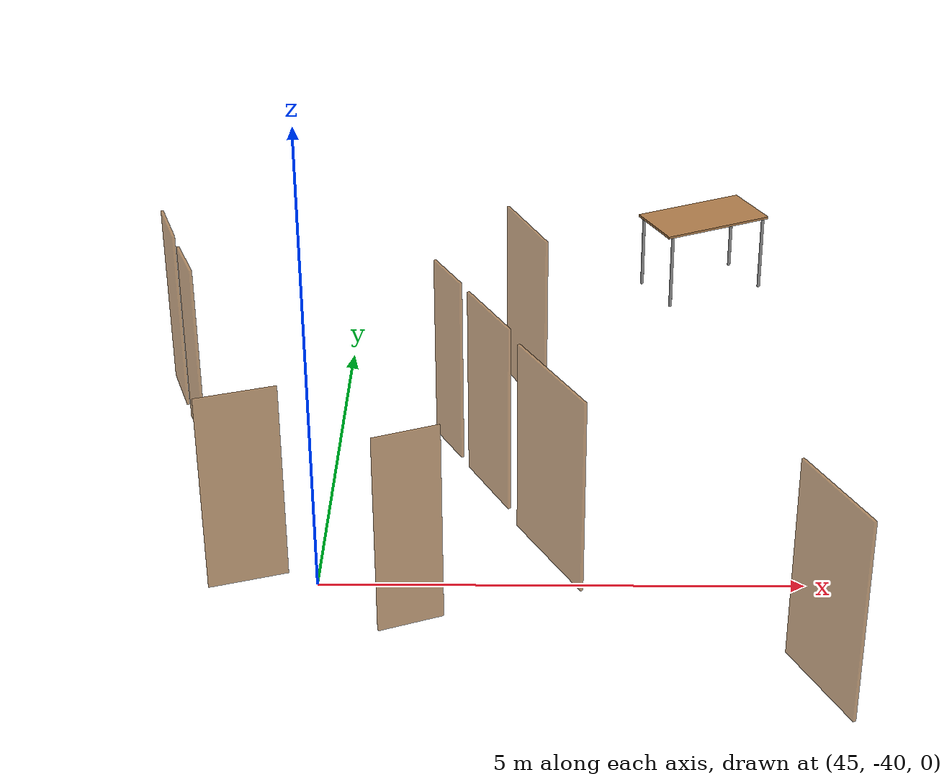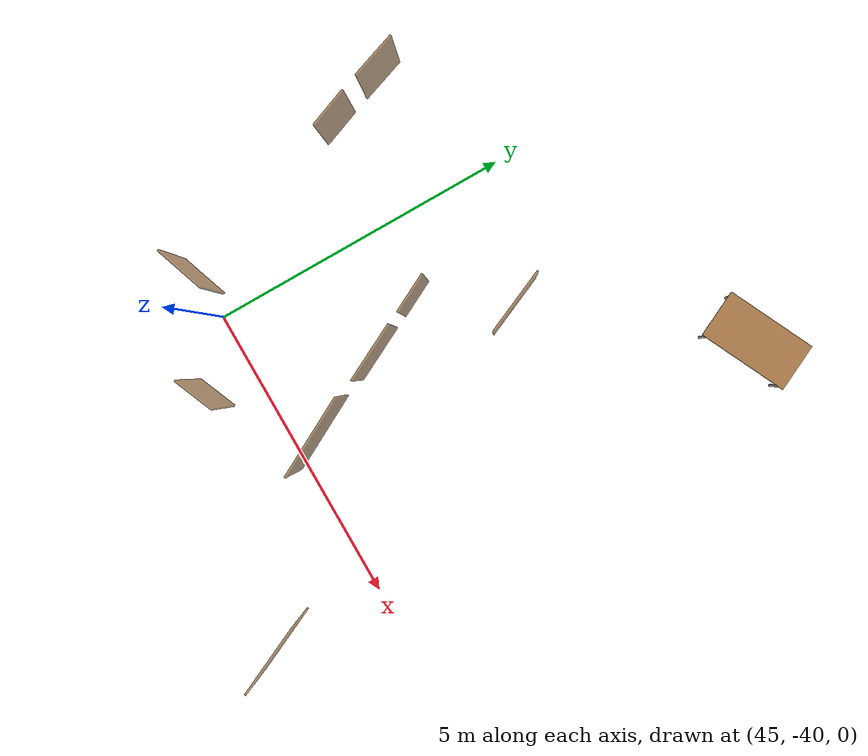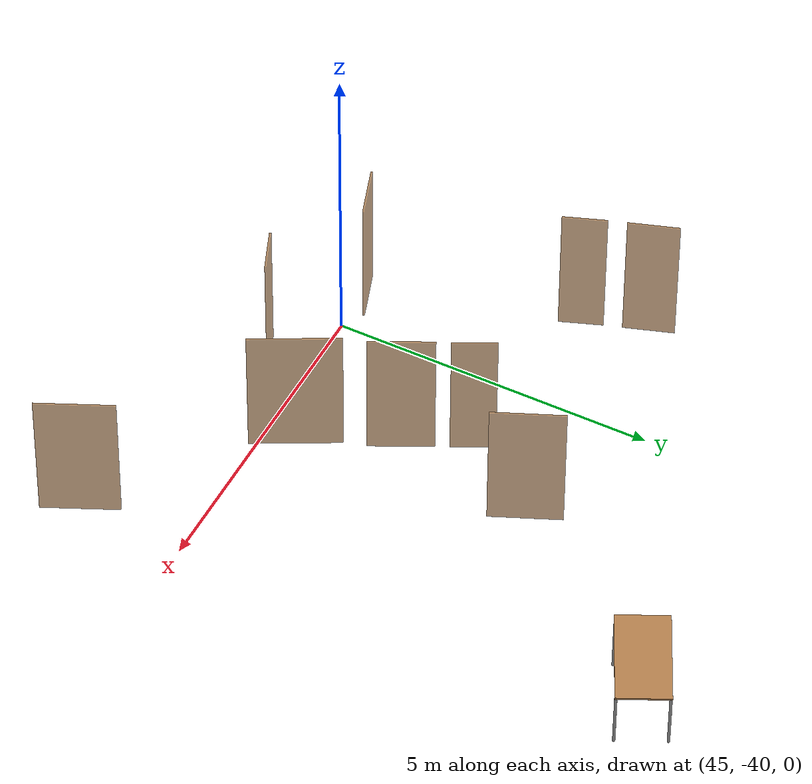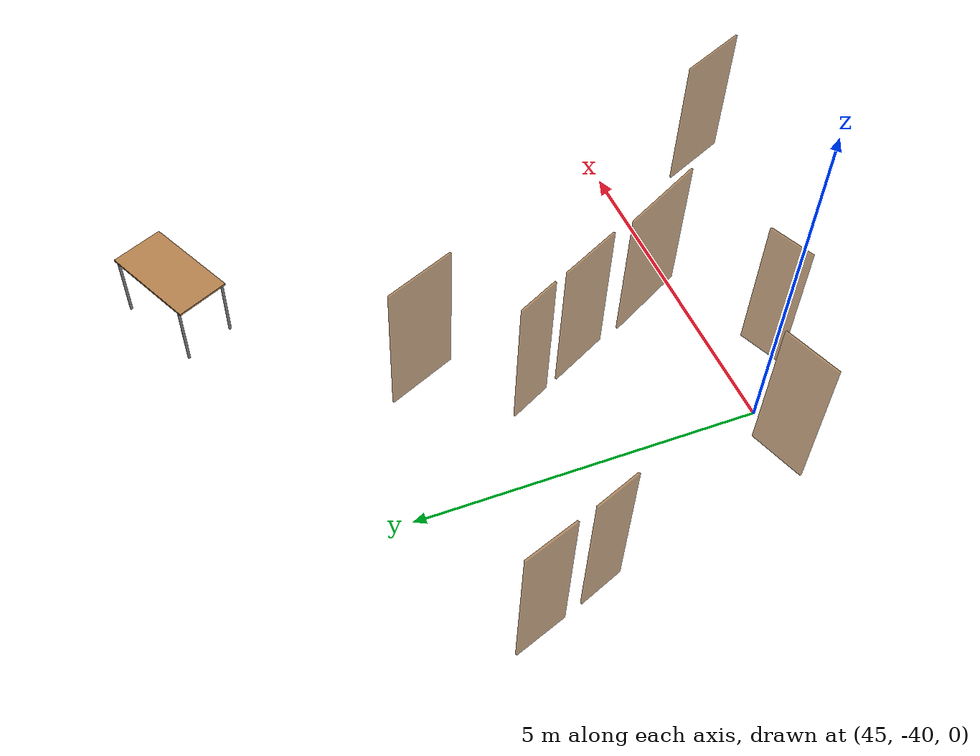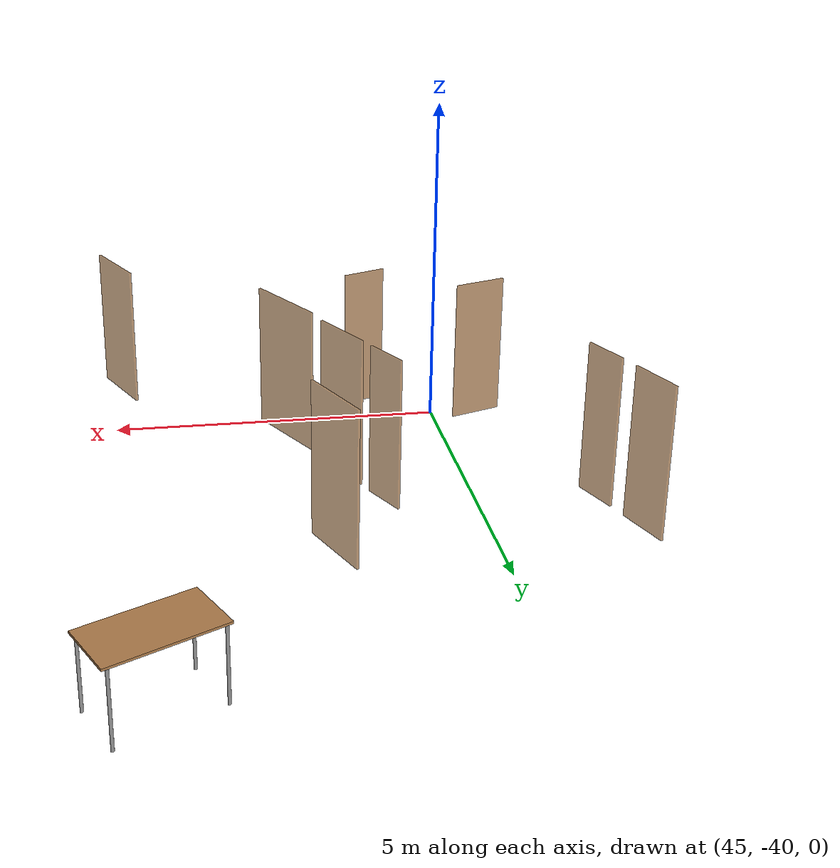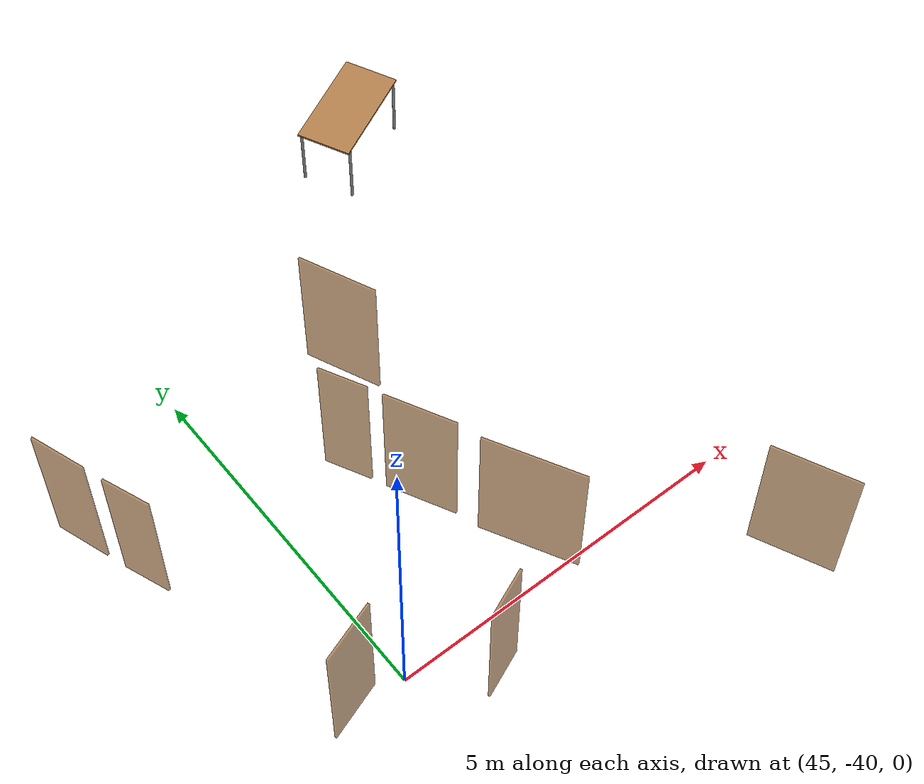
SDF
<sdf version="1.7">
 <world name="world">
  <include><uri>model://sun</uri></include>
  <include>
   <name>OpenRobotics/Table_8</name>
   <uri>model://Table</uri>
   <pose>49.48079260067924 -32.93587647956295 0.0 0 0 0.4547</pose>
   <static>True</static>
  </include>
  <model name="D1">
   <pose>46.73401999696762 -38.116521904240905 0.0 0 0 -1.0989798712124268</pose>
   <link name="right">
    <pose>0 0 1.11 0 0 0</pose>
    <visual name="right_visual">
     <geometry><box><size>0.9954726975178174 0.03 2.2</size></box></geometry>
     <material><ambient>0.5 0.25 0 0.6</ambient><diffuse>0.5 0.25 0 0.6</diffuse></material>
    </visual>
    <collision name="right_collision">
     <geometry><box><size>0.9954726975178174 0.03 2.2</size></box></geometry>
     <surface><contact><collide_bitmask>0x02</collide_bitmask></contact></surface>
    </collision>
    <inertial>
     <mass>50.0</mass>
     <inertia><ixx>20.17041666666667</ixx><iyy>24.295691214597504</iyy><izz>4.1327745479308335</izz></inertia>
    </inertial>
   </link>
   <joint name="right_joint" type="revolute">
    <parent>world</parent>
    <child>right</child>
    <axis><xyz>0 0 1</xyz><limit><lower>0</lower><upper>1.57</upper></limit></axis>
    <pose>0.5027363487589087 0 0 0 0 0</pose>
   </joint>
   <plugin name="door" filename="libdoor.so">
    <v_max_door>0.5</v_max_door>
    <a_max_door>0.3</a_max_door>
    <a_nom_door>0.15</a_nom_door>
    <dx_min_door>0.01</dx_min_door>
    <f_max_door>500.0</f_max_door>
    <door name="D1" type="SwingDoor" left_joint_name="empty_joint" right_joint_name="right_joint"/>
   </plugin>
  </model>
  <model name="D3">
   <pose>44.28064762432295 -39.935648684650616 0.0 0 0 -2.8085231029714617</pose>
   <link name="right">
    <pose>0 0 1.11 0 0 0</pose>
    <visual name="right_visual">
     <geometry><box><size>0.8388526958667103 0.03 2.2</size></box></geometry>
     <material><ambient>0.5 0.25 0 0.6</ambient><diffuse>0.5 0.25 0 0.6</diffuse></material>
    </visual>
    <collision name="right_collision">
     <geometry><box><size>0.8388526958667103 0.03 2.2</size></box></geometry>
     <surface><contact><collide_bitmask>0x02</collide_bitmask></contact></surface>
    </collision>
    <inertial>
     <mass>50.0</mass>
     <inertia><ixx>20.17041666666667</ixx><iyy>23.098641022345202</iyy><izz>2.935724355678532</izz></inertia>
    </inertial>
   </link>
   <joint name="right_joint" type="revolute">
    <parent>world</parent>
    <child>right</child>
    <axis><xyz>0 0 1</xyz><limit><lower>0</lower><upper>1.57</upper></limit></axis>
    <pose>0.42442634793335515 0 0 0 0 0</pose>
   </joint>
   <plugin name="door" filename="libdoor.so">
    <v_max_door>0.5</v_max_door>
    <a_max_door>0.3</a_max_door>
    <a_nom_door>0.15</a_nom_door>
    <dx_min_door>0.01</dx_min_door>
    <f_max_door>500.0</f_max_door>
    <door name="D3" type="SwingDoor" left_joint_name="empty_joint" right_joint_name="right_joint"/>
   </plugin>
  </model>
  <model name="D4">
   <pose>46.26773129898525 -37.17578190524803 0.0 0 0 -1.0969033267898198</pose>
   <link name="right">
    <pose>0 0 1.11 0 0 0</pose>
    <visual name="right_visual">
     <geometry><box><size>0.6729192020442292 0.03 2.2</size></box></geometry>
     <material><ambient>0.5 0.25 0 0.6</ambient><diffuse>0.5 0.25 0 0.6</diffuse></material>
    </visual>
    <collision name="right_collision">
     <geometry><box><size>0.6729192020442292 0.03 2.2</size></box></geometry>
     <surface><contact><collide_bitmask>0x02</collide_bitmask></contact></surface>
    </collision>
    <inertial>
     <mass>50.0</mass>
     <inertia><ixx>20.17041666666667</ixx><iyy>22.053417718666015</iyy><izz>1.8905010519993424</izz></inertia>
    </inertial>
   </link>
   <joint name="right_joint" type="revolute">
    <parent>world</parent>
    <child>right</child>
    <axis><xyz>0 0 1</xyz><limit><lower>0</lower><upper>1.57</upper></limit></axis>
    <pose>0.3414596010221146 0 0 0 0 0</pose>
   </joint>
   <plugin name="door" filename="libdoor.so">
    <v_max_door>0.5</v_max_door>
    <a_max_door>0.3</a_max_door>
    <a_nom_door>0.15</a_nom_door>
    <dx_min_door>0.01</dx_min_door>
    <f_max_door>500.0</f_max_door>
    <door name="D4" type="SwingDoor" left_joint_name="empty_joint" right_joint_name="right_joint"/>
   </plugin>
  </model>
  <model name="D5">
   <pose>47.146061395658826 -35.89175910112735 0.0 0 0 -1.153911512128053</pose>
   <link name="right">
    <pose>0 0 1.11 0 0 0</pose>
    <visual name="right_visual">
     <geometry><box><size>1.107136500225775 0.03 2.2</size></box></geometry>
     <material><ambient>0.5 0.25 0 0.6</ambient><diffuse>0.5 0.25 0 0.6</diffuse></material>
    </visual>
    <collision name="right_collision">
     <geometry><box><size>1.107136500225775 0.03 2.2</size></box></geometry>
     <surface><contact><collide_bitmask>0x02</collide_bitmask></contact></surface>
    </collision>
    <inertial>
     <mass>50.0</mass>
     <inertia><ixx>20.17041666666667</ixx><iyy>25.273963458884076</iyy><izz>5.111046792217405</izz></inertia>
    </inertial>
   </link>
   <joint name="right_joint" type="revolute">
    <parent>world</parent>
    <child>right</child>
    <axis><xyz>0 0 -1</xyz><limit><lower>0</lower><upper>1.57</upper></limit></axis>
    <pose>0.5585682501128875 0 0 0 0 0</pose>
   </joint>
   <plugin name="door" filename="libdoor.so">
    <v_max_door>0.5</v_max_door>
    <a_max_door>0.3</a_max_door>
    <a_nom_door>0.15</a_nom_door>
    <dx_min_door>0.01</dx_min_door>
    <f_max_door>500.0</f_max_door>
    <door name="D5" type="SwingDoor" left_joint_name="empty_joint" right_joint_name="right_joint"/>
   </plugin>
  </model>
  <model name="D6">
   <pose>49.93642456693043 -41.661415692926 0.0 0 0 -1.1319738374537638</pose>
   <link name="right">
    <pose>0 0 1.11 0 0 0</pose>
    <visual name="right_visual">
     <geometry><box><size>1.1848690229402588 0.03 2.2</size></box></geometry>
     <material><ambient>0.5 0.25 0 0.6</ambient><diffuse>0.5 0.25 0 0.6</diffuse></material>
    </visual>
    <collision name="right_collision">
     <geometry><box><size>1.1848690229402588 0.03 2.2</size></box></geometry>
     <surface><contact><collide_bitmask>0x02</collide_bitmask></contact></surface>
    </collision>
    <inertial>
     <mass>50.0</mass>
     <inertia><ixx>20.17041666666667</ixx><iyy>26.016310839680852</iyy><izz>5.8533941730141805</izz></inertia>
    </inertial>
   </link>
   <joint name="right_joint" type="revolute">
    <parent>world</parent>
    <child>right</child>
    <axis><xyz>0 0 -1</xyz><limit><lower>0</lower><upper>1.57</upper></limit></axis>
    <pose>0.5974345114701294 0 0 0 0 0</pose>
   </joint>
   <plugin name="door" filename="libdoor.so">
    <v_max_door>0.5</v_max_door>
    <a_max_door>0.3</a_max_door>
    <a_nom_door>0.15</a_nom_door>
    <dx_min_door>0.01</dx_min_door>
    <f_max_door>500.0</f_max_door>
    <door name="D6" type="SwingDoor" left_joint_name="empty_joint" right_joint_name="right_joint"/>
   </plugin>
  </model>
  <model name="D10">
   <pose>47.383400415650584 -39.50030985648326 0.0 0 0 -1.079641047657817</pose>
   <link name="right">
    <pose>0 0 1.11 0 0 0</pose>
    <visual name="right_visual">
     <geometry><box><size>1.387273254949858 0.03 2.2</size></box></geometry>
     <material><ambient>0.5 0.25 0 0.6</ambient><diffuse>0.5 0.25 0 0.6</diffuse></material>
    </visual>
    <collision name="right_collision">
     <geometry><box><size>1.387273254949858 0.03 2.2</size></box></geometry>
     <surface><contact><collide_bitmask>0x02</collide_bitmask></contact></surface>
    </collision>
    <inertial>
     <mass>50.0</mass>
     <inertia><ixx>20.17041666666667</ixx><iyy>28.185529516246564</iyy><izz>8.022612849579891</izz></inertia>
    </inertial>
   </link>
   <joint name="right_joint" type="revolute">
    <parent>world</parent>
    <child>right</child>
    <axis><xyz>0 0 1</xyz><limit><lower>0</lower><upper>1.57</upper></limit></axis>
    <pose>0.698636627474929 0 0 0 0 0</pose>
   </joint>
   <plugin name="door" filename="libdoor.so">
    <v_max_door>0.5</v_max_door>
    <a_max_door>0.3</a_max_door>
    <a_nom_door>0.15</a_nom_door>
    <dx_min_door>0.01</dx_min_door>
    <f_max_door>500.0</f_max_door>
    <door name="D10" type="SwingDoor" left_joint_name="empty_joint" right_joint_name="right_joint"/>
   </plugin>
  </model>
  <model name="D11">
   <pose>45.99190333832609 -40.67419420446733 0.0 0 0 0.39306529233235726</pose>
   <link name="right">
    <pose>0 0 1.11 0 0 0</pose>
    <visual name="right_visual">
     <geometry><box><size>0.6923773392659476 0.03 2.2</size></box></geometry>
     <material><ambient>0.5 0.25 0 0.6</ambient><diffuse>0.5 0.25 0 0.6</diffuse></material>
    </visual>
    <collision name="right_collision">
     <geometry><box><size>0.6923773392659476 0.03 2.2</size></box></geometry>
     <surface><contact><collide_bitmask>0x02</collide_bitmask></contact></surface>
    </collision>
    <inertial>
     <mass>50.0</mass>
     <inertia><ixx>20.17041666666667</ixx><iyy>22.16410991637081</iyy><izz>2.001193249704138</izz></inertia>
    </inertial>
   </link>
   <joint name="right_joint" type="revolute">
    <parent>world</parent>
    <child>right</child>
    <axis><xyz>0 0 1</xyz><limit><lower>0</lower><upper>1.57</upper></limit></axis>
    <pose>0.3511886696329738 0 0 0 0 0</pose>
   </joint>
   <plugin name="door" filename="libdoor.so">
    <v_max_door>0.5</v_max_door>
    <a_max_door>0.3</a_max_door>
    <a_nom_door>0.15</a_nom_door>
    <dx_min_door>0.01</dx_min_door>
    <f_max_door>500.0</f_max_door>
    <door name="D11" type="SwingDoor" left_joint_name="empty_joint" right_joint_name="right_joint"/>
   </plugin>
  </model>
  <model name="D23">
   <pose>43.31326579600213 -36.8663965765843 0.0 0 0 -1.2084228363325662</pose>
   <link name="right">
    <pose>0 0 1.11 0 0 0</pose>
    <visual name="right_visual">
     <geometry><box><size>0.6750244066471521 0.03 2.2</size></box></geometry>
     <material><ambient>0.5 0.25 0 0.6</ambient><diffuse>0.5 0.25 0 0.6</diffuse></material>
    </visual>
    <collision name="right_collision">
     <geometry><box><size>0.6750244066471521 0.03 2.2</size></box></geometry>
     <surface><contact><collide_bitmask>0x02</collide_bitmask></contact></surface>
    </collision>
    <inertial>
     <mass>50.0</mass>
     <inertia><ixx>20.17041666666667</ixx><iyy>22.06524145653892</iyy><izz>1.9023247898722493</izz></inertia>
    </inertial>
   </link>
   <joint name="right_joint" type="revolute">
    <parent>world</parent>
    <child>right</child>
    <axis><xyz>0 0 1</xyz><limit><lower>0</lower><upper>1.57</upper></limit></axis>
    <pose>0.34251220332357607 0 0 0 0 0</pose>
   </joint>
   <plugin name="door" filename="libdoor.so">
    <v_max_door>0.5</v_max_door>
    <a_max_door>0.3</a_max_door>
    <a_nom_door>0.15</a_nom_door>
    <dx_min_door>0.01</dx_min_door>
    <f_max_door>500.0</f_max_door>
    <door name="D23" type="SwingDoor" left_joint_name="empty_joint" right_joint_name="right_joint"/>
   </plugin>
  </model>
  <model name="D24">
   <pose>42.97706858378069 -35.91165544600844 0.0 0 0 -1.2416042181407223</pose>
   <link name="right">
    <pose>0 0 1.11 0 0 0</pose>
    <visual name="right_visual">
     <geometry><box><size>0.7800969463322023 0.03 2.2</size></box></geometry>
     <material><ambient>0.5 0.25 0 0.6</ambient><diffuse>0.5 0.25 0 0.6</diffuse></material>
    </visual>
    <collision name="right_collision">
     <geometry><box><size>0.7800969463322023 0.03 2.2</size></box></geometry>
     <surface><contact><collide_bitmask>0x02</collide_bitmask></contact></surface>
    </collision>
    <inertial>
     <mass>50.0</mass>
     <inertia><ixx>20.17041666666667</ixx><iyy>22.702296856986784</iyy><izz>2.539380190320112</izz></inertia>
    </inertial>
   </link>
   <joint name="right_joint" type="revolute">
    <parent>world</parent>
    <child>right</child>
    <axis><xyz>0 0 1</xyz><limit><lower>0</lower><upper>1.57</upper></limit></axis>
    <pose>0.39504847316610114 0 0 0 0 0</pose>
   </joint>
   <plugin name="door" filename="libdoor.so">
    <v_max_door>0.5</v_max_door>
    <a_max_door>0.3</a_max_door>
    <a_nom_door>0.15</a_nom_door>
    <dx_min_door>0.01</dx_min_door>
    <f_max_door>500.0</f_max_door>
    <door name="D24" type="SwingDoor" left_joint_name="empty_joint" right_joint_name="right_joint"/>
   </plugin>
  </model>
 </world>
</sdf>
